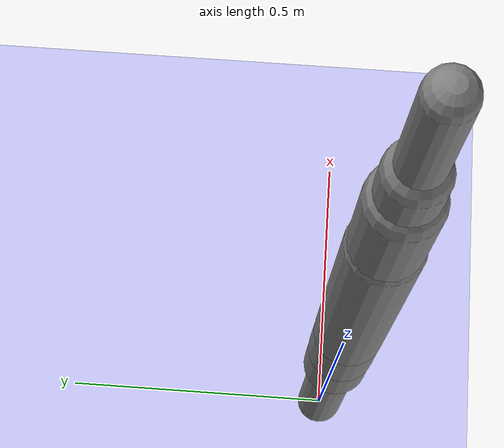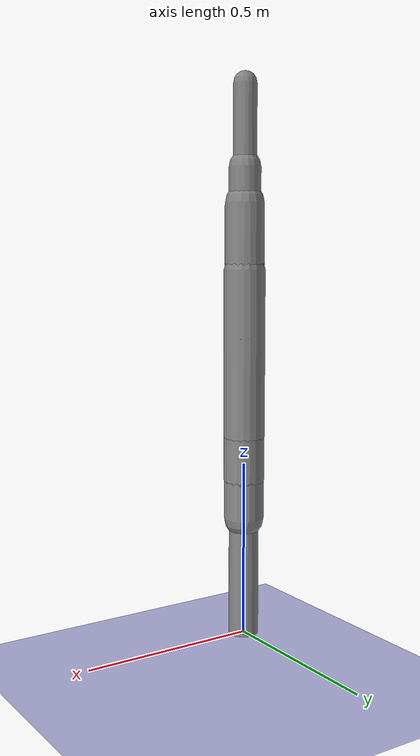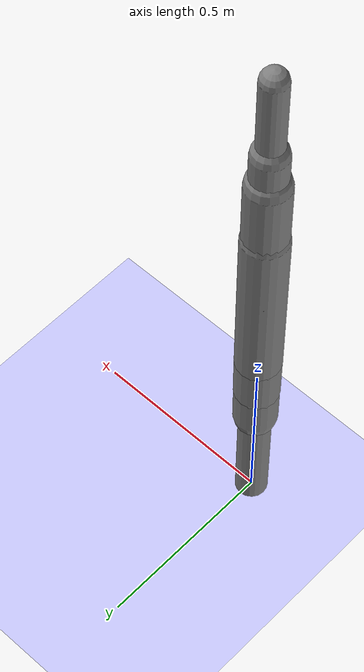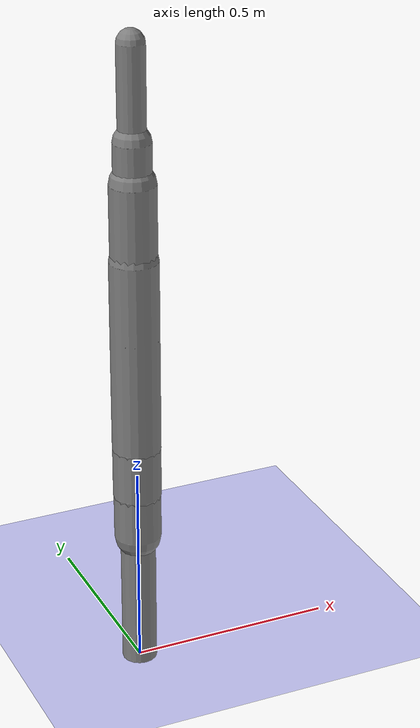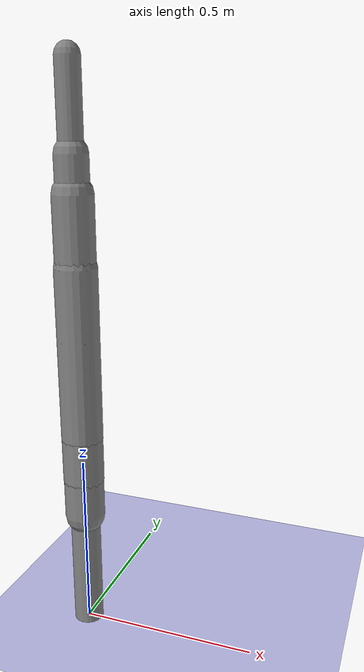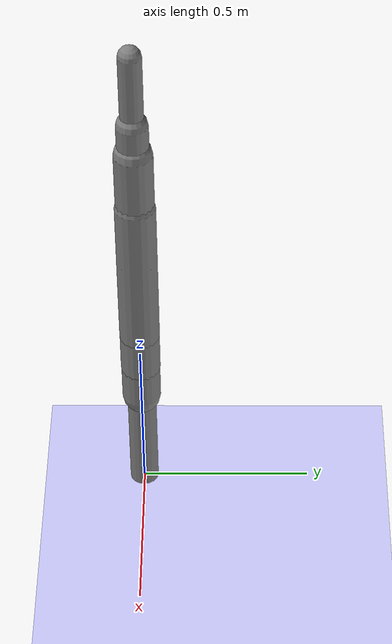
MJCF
<?xml version='1.0' encoding='UTF-8'?>
<mujoco model="robot_model">
  <worldbody>
    <light name="light" pos="0 -3 10" dir="0 0.5 -1" diffuse=".8 .8 .8" specular="0.1 0.1 0.1"/>
    <geom name="floor" type="plane" size="10.0 10.0 0.1" pos="0 0 0" rgba="0.8 0.8 1 1" contype="2" conaffinity="1"/>
    <body name="limb0" pos="0 0 0">
      <geom type="capsule" fromto="0 0 0 0 0 0.4753458950223673" size="0.04254630188372279" density="667.4519930907657" contype="1" conaffinity="2"/>
      <site type="sphere" size="0.01" name="limb0_site0" pos="0 0 0.4541516847688603"/>
      <site type="sphere" size="0.01" name="limb0_site1" pos="0 0 0.3419643777956851"/>
      <site type="sphere" size="0.01" name="limb0_site2" pos="0 0 0.3996599353216797"/>
      <freejoint name="limb0_root"/>
      <body name="limb1" pos="0 0 0.4541516847688603">
        <geom type="capsule" fromto="0 0 0 0 0 0.40845966504384795" size="0.058092403829812705" density="1189.9842333916856" contype="1" conaffinity="2"/>
        <site type="sphere" size="0.01" name="limb1_site0" pos="0 0 0.3831327430558419"/>
        <site type="sphere" size="0.01" name="limb1_site1" pos="0 0 0.12396703216809563"/>
        <body name="limb2" pos="0 0 0.3831327430558419">
          <geom type="capsule" fromto="0 0 0 0 0 0.5" size="0.045329815490319995" density="1017.2531489540214" contype="1" conaffinity="2"/>
          <site type="sphere" size="0.01" name="limb2_site0" pos="0 0 0.4086911084967624"/>
          <site type="sphere" size="0.01" name="limb2_site1" pos="0 0 0.06794215458780323"/>
          <site type="sphere" size="0.01" name="limb2_site2" pos="0 0 0.1982484344008178"/>
          <body name="limb3" pos="0 0 0.4086911084967624">
            <geom type="capsule" fromto="0 0 0 0 0 0.31639823365961917" size="0.03332545858901545" density="810.7111401801089" contype="1" conaffinity="2"/>
            <joint name="joint_limb2_limb3_0" type="hinge" axis="1 0 0" range="-39.49060384065946 39.49060384065946" damping="5.0"/>
          </body>
          <body name="limb4" pos="0 0 0.06794215458780323">
            <geom type="capsule" fromto="0 0 0 0 0 0.3340237041914354" size="0.055493275216618836" density="919.7777078912612" contype="1" conaffinity="2"/>
            <joint name="joint_limb2_limb4_0" type="hinge" axis="0 1 0" range="-91.32318965408898 91.32318965408898" damping="5.0"/>
          </body>
          <body name="limb5" pos="0 0 0.1982484344008178">
            <geom type="capsule" fromto="0 0 0 0 0 0.2915545876731404" size="0.041653011905912966" density="980.8720051175214" contype="1" conaffinity="2"/>
            <joint name="joint_limb2_limb5_0" type="hinge" axis="0 1 0" range="-107.14717313770412 107.14717313770412" damping="5.0"/>
          </body>
          <joint name="joint_limb1_limb2_0" type="hinge" axis="0 1 0" range="-60.504894728636025 60.504894728636025" damping="5.0"/>
        </body>
        <body name="limb6" pos="0 0 0.12396703216809563">
          <geom type="capsule" fromto="0 0 0 0 0 0.4769937876246635" size="0.05853425073235774" density="823.7473855435437" contype="1" conaffinity="2"/>
          <joint name="joint_limb1_limb6_0" type="hinge" axis="0 0 1" range="-73.63306974460478 73.63306974460478" damping="5.0"/>
        </body>
        <joint name="joint_limb0_limb1_0" type="hinge" axis="0 1 0" range="-102.24898965233746 102.24898965233746" damping="5.0"/>
      </body>
      <body name="limb7" pos="0 0 0.3419643777956851">
        <geom type="capsule" fromto="0 0 0 0 0 0.3390209356510857" size="0.056972380129968095" density="679.5462153507075" contype="1" conaffinity="2"/>
        <joint name="joint_limb0_limb7_0" type="hinge" axis="0 1 0" range="-76.9634112741505 76.9634112741505" damping="5.0"/>
      </body>
      <body name="limb8" pos="0 0 0.3996599353216797">
        <geom type="capsule" fromto="0 0 0 0 0 0.16901349670638882" size="0.029773060920250092" density="867.1563718257595" contype="1" conaffinity="2"/>
        <joint name="joint_limb0_limb8_0" type="hinge" axis="0 1 0" range="-63.22844417036358 63.22844417036358" damping="5.0"/>
      </body>
    </body>
  </worldbody>
  <actuator>
    <position name="position_actuator_joint_limb0_limb1_0" joint="joint_limb0_limb1_0" gear="1.6641496608697004" inheritrange="1" forcerange="-30.652165452900483 30.652165452900483" forcelimited="true" kp="100.0"/>
    <position name="position_actuator_joint_limb1_limb2_0" joint="joint_limb1_limb2_0" gear="1.855224638398584" inheritrange="1" forcerange="-18.401183504925072 18.401183504925072" forcelimited="true" kp="100.0"/>
    <position name="position_actuator_joint_limb2_limb3_0" joint="joint_limb2_limb3_0" gear="1.7381429786599083" inheritrange="1" forcerange="-5.1032112549917885 5.1032112549917885" forcelimited="true" kp="100.0"/>
    <position name="position_actuator_joint_limb2_limb4_0" joint="joint_limb2_limb4_0" gear="1.8896882551835783" inheritrange="1" forcerange="-18.153456229634436 18.153456229634436" forcelimited="true" kp="100.0"/>
    <position name="position_actuator_joint_limb2_limb5_0" joint="joint_limb2_limb5_0" gear="0.7060054095369748" inheritrange="1" forcerange="-9.27832460712748 9.27832460712748" forcelimited="true" kp="100.0"/>
    <position name="position_actuator_joint_limb1_limb6_0" joint="joint_limb1_limb6_0" gear="0.7157367940760531" inheritrange="1" forcerange="-24.606956957865886 24.606956957865886" forcelimited="true" kp="100.0"/>
    <position name="position_actuator_joint_limb0_limb7_0" joint="joint_limb0_limb7_0" gear="1.25739722463336" inheritrange="1" forcerange="-14.378019506289444 14.378019506289444" forcelimited="true" kp="100.0"/>
    <position name="position_actuator_joint_limb0_limb8_0" joint="joint_limb0_limb8_0" gear="1.068427433655958" inheritrange="1" forcerange="-2.5200515399804724 2.5200515399804724" forcelimited="true" kp="100.0"/>
  </actuator>
</mujoco>
